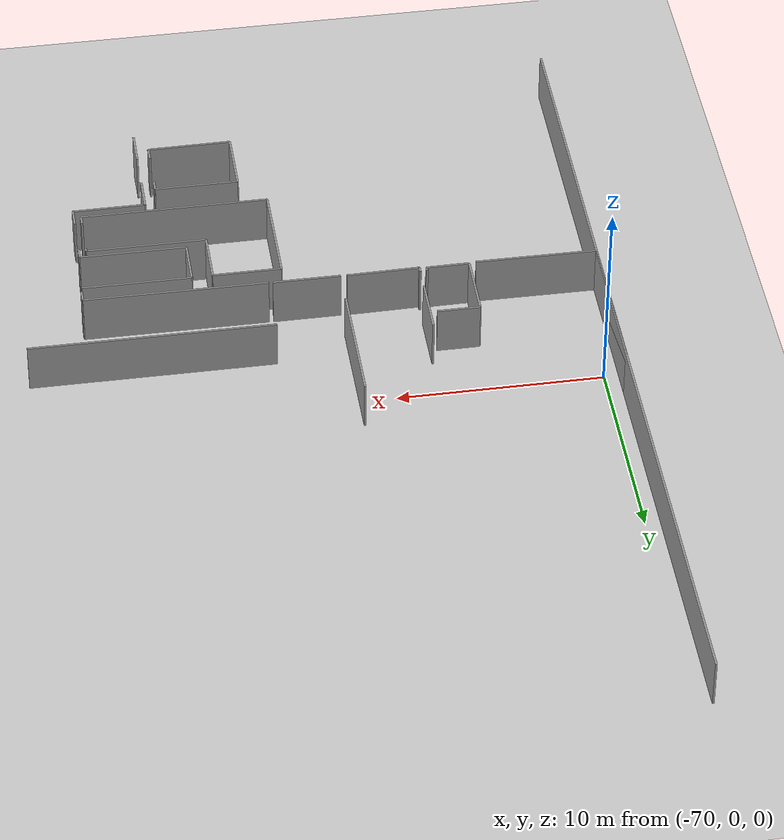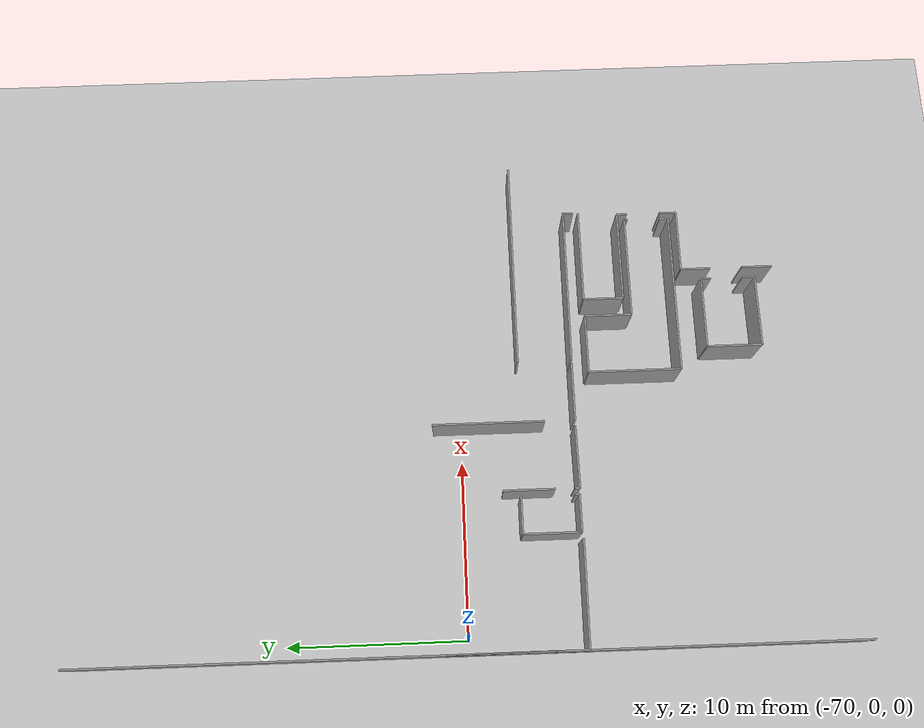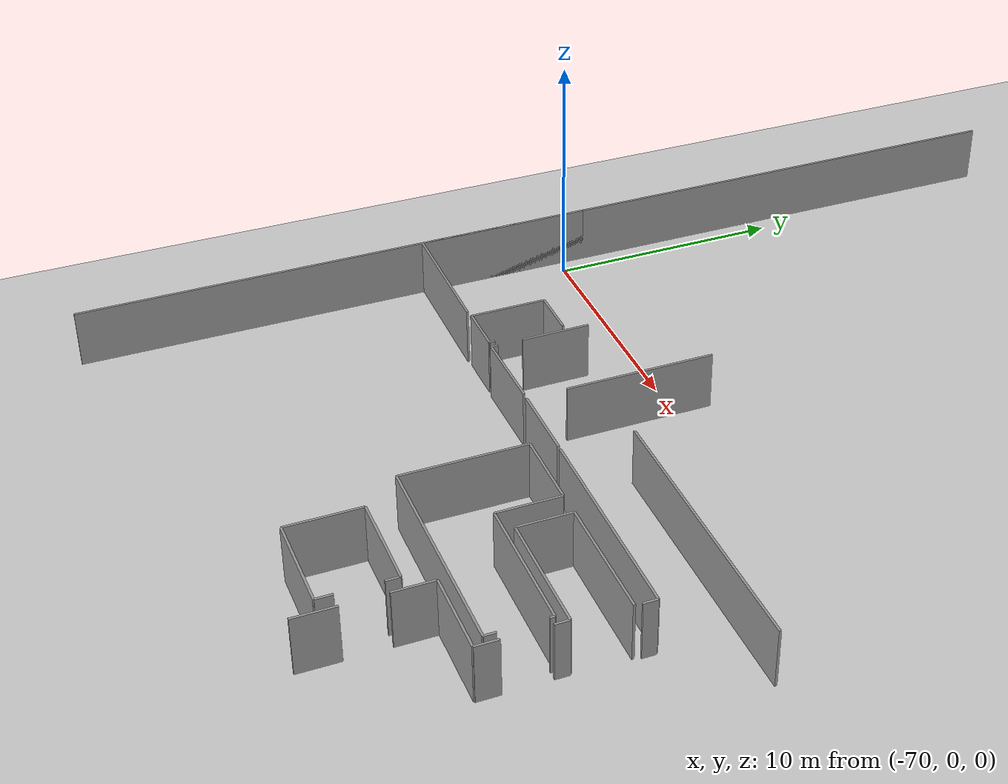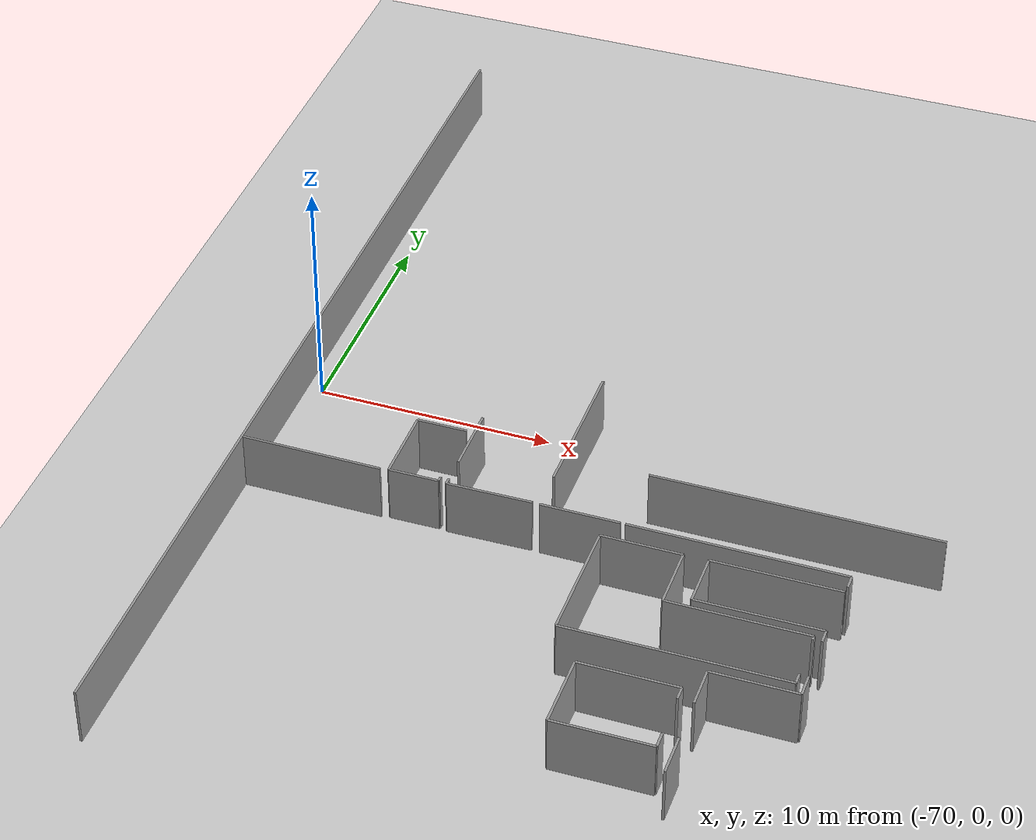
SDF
<sdf version="1.6">
 <world name="default">
  <model name="ground_plane">
   <static>1</static>
   <link name="link">
    <collision name="collision">
     <geometry><plane><normal>0 0 1</normal><size>100 100</size></plane></geometry>
     <surface><friction><ode><mu>100</mu><mu2>50</mu2></ode></friction></surface>
    </collision>
    <visual name="visual">
     <cast_shadows>0</cast_shadows>
     <geometry><plane><normal>0 0 1</normal><size>100 100</size></plane></geometry>
     <material>
      <script><uri>file://media/materials/scripts/gazebo.material</uri><name>Gazebo/Grey</name></script>
     </material>
    </visual>
   </link>
  </model>
  <model name="0510035738_A_40_1_101">
   <static>1</static>
   <link name="Wall_7">
    <collision name="Wall_7_Collision">
     <geometry><box><size>3.29875439643 0.1 2.5</size></box></geometry>
     <pose>1.64937719822 0 1.25 0 0 0</pose>
    </collision>
    <visual name="Wall_7_Visual">
     <pose>1.64937719822 0 1.25 0 0 0</pose>
     <geometry><box><size>3.29875439643 0.1 2.5</size></box></geometry>
     <material>
      <script><uri>file://media/materials/scripts/gazebo.material</uri><name>Gazebo/Grey</name></script>
      <ambient>1 1 1 1</ambient>
     </material>
    </visual>
    <pose>15.8032936755 -27.9271683787 0 0 0 3.14159265359</pose>
   </link>
   <link name="Wall_8">
    <collision name="Wall_8_Collision">
     <geometry><box><size>6.28413982249 0.1 2.5</size></box></geometry>
     <pose>3.14206991125 0 1.25 0 0 0</pose>
    </collision>
    <visual name="Wall_8_Visual">
     <pose>3.14206991125 0 1.25 0 0 0</pose>
     <geometry><box><size>6.28413982249 0.1 2.5</size></box></geometry>
     <material>
      <script><uri>file://media/materials/scripts/gazebo.material</uri><name>Gazebo/Grey</name></script>
      <ambient>1 1 1 1</ambient>
     </material>
    </visual>
    <pose>12.504539279 -26.2457940247 0 0 0 1.57079632679</pose>
   </link>
   <link name="Wall_24">
    <collision name="Wall_24_Collision">
     <geometry><box><size>7.58205619818 0.1 2.5</size></box></geometry>
     <pose>3.79102809909 0 1.25 0 0 0</pose>
    </collision>
    <visual name="Wall_24_Visual">
     <pose>3.79102809909 0 1.25 0 0 0</pose>
     <geometry><box><size>7.58205619818 0.1 2.5</size></box></geometry>
     <material>
      <script><uri>file://media/materials/scripts/gazebo.material</uri><name>Gazebo/Grey</name></script>
      <ambient>1 1 1 1</ambient>
     </material>
    </visual>
    <pose>0.0 -27.9596734259 0 0 0 1.57079632679</pose>
   </link>
   <link name="Wall_28">
    <collision name="Wall_28_Collision">
     <geometry><box><size>5.91169654504 0.1 2.5</size></box></geometry>
     <pose>2.95584827252 0 1.25 0 0 0</pose>
    </collision>
    <visual name="Wall_28_Visual">
     <pose>2.95584827252 0 1.25 0 0 0</pose>
     <geometry><box><size>5.91169654504 0.1 2.5</size></box></geometry>
     <material>
      <script><uri>file://media/materials/scripts/gazebo.material</uri><name>Gazebo/Grey</name></script>
      <ambient>1 1 1 1</ambient>
     </material>
    </visual>
    <pose>5.91160150844 -27.9931942557 0 0 0 3.1359223677</pose>
   </link>
   <link name="Wall_29">
    <collision name="Wall_29_Collision">
     <geometry><box><size>0.277054737992 0.1 2.5</size></box></geometry>
     <pose>0.138527368996 0 1.25 0 0 0</pose>
    </collision>
    <visual name="Wall_29_Visual">
     <pose>0.138527368996 0 1.25 0 0 0</pose>
     <geometry><box><size>0.277054737992 0.1 2.5</size></box></geometry>
     <material>
      <script><uri>file://media/materials/scripts/gazebo.material</uri><name>Gazebo/Grey</name></script>
      <ambient>1 1 1 1</ambient>
     </material>
    </visual>
    <pose>8.66742003885 -27.9642444481 0 0 0 1.57079632679</pose>
   </link>
   <link name="Wall_30">
    <collision name="Wall_30_Collision">
     <geometry><box><size>2.8764427289 0.1 2.5</size></box></geometry>
     <pose>1.43822136445 0 1.25 0 0 0</pose>
    </collision>
    <visual name="Wall_30_Visual">
     <pose>1.43822136445 0 1.25 0 0 0</pose>
     <geometry><box><size>2.8764427289 0.1 2.5</size></box></geometry>
     <material>
      <script><uri>file://media/materials/scripts/gazebo.material</uri><name>Gazebo/Grey</name></script>
      <ambient>1 1 1 1</ambient>
     </material>
    </visual>
    <pose>8.66742003885 -26.6152849905 0 0 0 1.57079632679</pose>
   </link>
   <link name="Wall_34">
    <collision name="Wall_34_Collision">
     <geometry><box><size>3.53784264876 0.1 2.5</size></box></geometry>
     <pose>1.76892132438 0 1.25 0 0 0</pose>
    </collision>
    <visual name="Wall_34_Visual">
     <pose>1.76892132438 0 1.25 0 0 0</pose>
     <geometry><box><size>3.53784264876 0.1 2.5</size></box></geometry>
     <material>
      <script><uri>file://media/materials/scripts/gazebo.material</uri><name>Gazebo/Grey</name></script>
      <ambient>1 1 1 1</ambient>
     </material>
    </visual>
    <pose>12.2048833754 -27.9124395292 0 0 0 -3.12694904855</pose>
   </link>
   <link name="Wall_35">
    <collision name="Wall_35_Collision">
     <geometry><box><size>3.21698388715 0.1 2.5</size></box></geometry>
     <pose>1.60849194357 0 1.25 0 0 0</pose>
    </collision>
    <visual name="Wall_35_Visual">
     <pose>1.60849194357 0 1.25 0 0 0</pose>
     <geometry><box><size>3.21698388715 0.1 2.5</size></box></geometry>
     <material>
      <script><uri>file://media/materials/scripts/gazebo.material</uri><name>Gazebo/Grey</name></script>
      <ambient>1 1 1 1</ambient>
     </material>
    </visual>
    <pose>6.24680980738 -27.9327551837 0 0 0 1.57079632679</pose>
   </link>
   <link name="Wall_36">
    <collision name="Wall_36_Collision">
     <geometry><box><size>2.08590982389 0.1 2.5</size></box></geometry>
     <pose>1.04295491194 0 1.25 0 0 0</pose>
    </collision>
    <visual name="Wall_36_Visual">
     <pose>1.04295491194 0 1.25 0 0 0</pose>
     <geometry><box><size>2.08590982389 0.1 2.5</size></box></geometry>
     <material>
      <script><uri>file://media/materials/scripts/gazebo.material</uri><name>Gazebo/Grey</name></script>
      <ambient>1 1 1 1</ambient>
     </material>
    </visual>
    <pose>6.24680980738 -24.7157712965 0 0 0 0.0</pose>
   </link>
   <link name="Wall_38">
    <collision name="Wall_38_Collision">
     <geometry><box><size>0.219663014081 0.1 2.5</size></box></geometry>
     <pose>0.109831507041 0 1.25 0 0 0</pose>
    </collision>
    <visual name="Wall_38_Visual">
     <pose>0.109831507041 0 1.25 0 0 0</pose>
     <geometry><box><size>0.219663014081 0.1 2.5</size></box></geometry>
     <material>
      <script><uri>file://media/materials/scripts/gazebo.material</uri><name>Gazebo/Grey</name></script>
      <ambient>1 1 1 1</ambient>
     </material>
    </visual>
    <pose>8.33271963127 -27.696839646 0 0 0 -1.57079632679</pose>
   </link>
   <link name="Wall_39">
    <collision name="Wall_39_Collision">
     <geometry><box><size>2.08597313931 0.1 2.5</size></box></geometry>
     <pose>1.04298656965 0 1.25 0 0 0</pose>
    </collision>
    <visual name="Wall_39_Visual">
     <pose>1.04298656965 0 1.25 0 0 0</pose>
     <geometry><box><size>2.08597313931 0.1 2.5</size></box></geometry>
     <material>
      <script><uri>file://media/materials/scripts/gazebo.material</uri><name>Gazebo/Grey</name></script>
      <ambient>1 1 1 1</ambient>
     </material>
    </visual>
    <pose>8.33271963127 -27.9165026601 0 0 0 -3.1338012359</pose>
   </link>
   <link name="Wall_45">
    <collision name="Wall_45_Collision">
     <geometry><box><size>11.8983709385 0.1 2.5</size></box></geometry>
     <pose>5.94918546923 0 1.25 0 0 0</pose>
    </collision>
    <visual name="Wall_45_Visual">
     <pose>5.94918546923 0 1.25 0 0 0</pose>
     <geometry><box><size>11.8983709385 0.1 2.5</size></box></geometry>
     <material>
      <script><uri>file://media/materials/scripts/gazebo.material</uri><name>Gazebo/Grey</name></script>
      <ambient>1 1 1 1</ambient>
     </material>
    </visual>
    <pose>15.9957845017 -24.8925174905 0 0 0 0.0</pose>
   </link>
   <link name="Wall_48">
    <collision name="Wall_48_Collision">
     <geometry><box><size>0.587122414516 0.1 2.5</size></box></geometry>
     <pose>0.293561207258 0 1.25 0 0 0</pose>
    </collision>
    <visual name="Wall_48_Visual">
     <pose>0.293561207258 0 1.25 0 0 0</pose>
     <geometry><box><size>0.587122414516 0.1 2.5</size></box></geometry>
     <material>
      <script><uri>file://media/materials/scripts/gazebo.material</uri><name>Gazebo/Grey</name></script>
      <ambient>1 1 1 1</ambient>
     </material>
    </visual>
    <pose>24.9445763551 -28.5607628528 0 0 0 1.57079632679</pose>
   </link>
   <link name="Wall_49">
    <collision name="Wall_49_Collision">
     <geometry><box><size>8.94888525124 0.1 2.5</size></box></geometry>
     <pose>4.47444262562 0 1.25 0 0 0</pose>
    </collision>
    <visual name="Wall_49_Visual">
     <pose>4.47444262562 0 1.25 0 0 0</pose>
     <geometry><box><size>8.94888525124 0.1 2.5</size></box></geometry>
     <material>
      <script><uri>file://media/materials/scripts/gazebo.material</uri><name>Gazebo/Grey</name></script>
      <ambient>1 1 1 1</ambient>
     </material>
    </visual>
    <pose>24.9445763551 -27.9736404383 0 0 0 3.13702388377</pose>
   </link>
   <link name="Wall_71">
    <collision name="Wall_71_Collision">
     <geometry><box><size>1.74562261132 0.1 2.5</size></box></geometry>
     <pose>0.872811305662 0 1.25 0 0 0</pose>
    </collision>
    <visual name="Wall_71_Visual">
     <pose>0.872811305662 0 1.25 0 0 0</pose>
     <geometry><box><size>1.74562261132 0.1 2.5</size></box></geometry>
     <material>
      <script><uri>file://media/materials/scripts/gazebo.material</uri><name>Gazebo/Grey</name></script>
      <ambient>1 1 1 1</ambient>
     </material>
    </visual>
    <pose>21.2326523357 -39.8336655789 0 0 0 1.57079632679</pose>
   </link>
   <link name="Wall_72">
    <collision name="Wall_72_Collision">
     <geometry><box><size>1.704483411 0.1 2.5</size></box></geometry>
     <pose>0.852241705499 0 1.25 0 0 0</pose>
    </collision>
    <visual name="Wall_72_Visual">
     <pose>0.852241705499 0 1.25 0 0 0</pose>
     <geometry><box><size>1.704483411 0.1 2.5</size></box></geometry>
     <material>
      <script><uri>file://media/materials/scripts/gazebo.material</uri><name>Gazebo/Grey</name></script>
      <ambient>1 1 1 1</ambient>
     </material>
    </visual>
    <pose>21.2326523357 -36.273347131 0 0 0 1.57079632679</pose>
   </link>
   <link name="Wall_73">
    <collision name="Wall_73_Collision">
     <geometry><box><size>3.54736721815 0.1 2.5</size></box></geometry>
     <pose>1.77368360908 0 1.25 0 0 0</pose>
    </collision>
    <visual name="Wall_73_Visual">
     <pose>1.77368360908 0 1.25 0 0 0</pose>
     <geometry><box><size>3.54736721815 0.1 2.5</size></box></geometry>
     <material>
      <script><uri>file://media/materials/scripts/gazebo.material</uri><name>Gazebo/Grey</name></script>
      <ambient>1 1 1 1</ambient>
     </material>
    </visual>
    <pose>21.2326523357 -34.5688637201 0 0 0 0.0</pose>
   </link>
   <link name="Wall_74">
    <collision name="Wall_74_Collision">
     <geometry><box><size>0.95966072857 0.1 2.5</size></box></geometry>
     <pose>0.479830364285 0 1.25 0 0 0</pose>
    </collision>
    <visual name="Wall_74_Visual">
     <pose>0.479830364285 0 1.25 0 0 0</pose>
     <geometry><box><size>0.95966072857 0.1 2.5</size></box></geometry>
     <material>
      <script><uri>file://media/materials/scripts/gazebo.material</uri><name>Gazebo/Grey</name></script>
      <ambient>1 1 1 1</ambient>
     </material>
    </visual>
    <pose>24.7800195538 -34.5688637201 0 0 0 1.57079632679</pose>
   </link>
   <link name="Wall_75">
    <collision name="Wall_75_Collision">
     <geometry><box><size>0.592963165179 0.1 2.5</size></box></geometry>
     <pose>0.296481582589 0 1.25 0 0 0</pose>
    </collision>
    <visual name="Wall_75_Visual">
     <pose>0.296481582589 0 1.25 0 0 0</pose>
     <geometry><box><size>0.592963165179 0.1 2.5</size></box></geometry>
     <material>
      <script><uri>file://media/materials/scripts/gazebo.material</uri><name>Gazebo/Grey</name></script>
      <ambient>1 1 1 1</ambient>
     </material>
    </visual>
    <pose>24.7800195538 -31.7094353518 0 0 0 1.57079632679</pose>
   </link>
   <link name="Wall_76">
    <collision name="Wall_76_Collision">
     <geometry><box><size>5.17719059893 0.1 2.5</size></box></geometry>
     <pose>2.58859529947 0 1.25 0 0 0</pose>
    </collision>
    <visual name="Wall_76_Visual">
     <pose>2.58859529947 0 1.25 0 0 0</pose>
     <geometry><box><size>5.17719059893 0.1 2.5</size></box></geometry>
     <material>
      <script><uri>file://media/materials/scripts/gazebo.material</uri><name>Gazebo/Grey</name></script>
      <ambient>1 1 1 1</ambient>
     </material>
    </visual>
    <pose>24.7800195538 -31.1164721866 0 0 0 3.14159265359</pose>
   </link>
   <link name="Wall_77">
    <collision name="Wall_77_Collision">
     <geometry><box><size>2.27179806239 0.1 2.5</size></box></geometry>
     <pose>1.1358990312 0 1.25 0 0 0</pose>
    </collision>
    <visual name="Wall_77_Visual">
     <pose>1.1358990312 0 1.25 0 0 0</pose>
     <geometry><box><size>2.27179806239 0.1 2.5</size></box></geometry>
     <material>
      <script><uri>file://media/materials/scripts/gazebo.material</uri><name>Gazebo/Grey</name></script>
      <ambient>1 1 1 1</ambient>
     </material>
    </visual>
    <pose>19.6028289549 -31.1164721866 0 0 0 1.57079632679</pose>
   </link>
   <link name="Wall_78">
    <collision name="Wall_78_Collision">
     <geometry><box><size>5.30975024442 0.1 2.5</size></box></geometry>
     <pose>2.65487512221 0 1.25 0 0 0</pose>
    </collision>
    <visual name="Wall_78_Visual">
     <pose>2.65487512221 0 1.25 0 0 0</pose>
     <geometry><box><size>5.30975024442 0.1 2.5</size></box></geometry>
     <material>
      <script><uri>file://media/materials/scripts/gazebo.material</uri><name>Gazebo/Grey</name></script>
      <ambient>1 1 1 1</ambient>
     </material>
    </visual>
    <pose>19.6028289549 -28.8446741242 0 0 0 0.0</pose>
   </link>
   <link name="Wall_82">
    <collision name="Wall_82_Collision">
     <geometry><box><size>5.23966123646 0.1 2.5</size></box></geometry>
     <pose>2.61983061823 0 1.25 0 0 0</pose>
    </collision>
    <visual name="Wall_82_Visual">
     <pose>2.61983061823 0 1.25 0 0 0</pose>
     <geometry><box><size>5.23966123646 0.1 2.5</size></box></geometry>
     <material>
      <script><uri>file://media/materials/scripts/gazebo.material</uri><name>Gazebo/Grey</name></script>
      <ambient>1 1 1 1</ambient>
     </material>
    </visual>
    <pose>15.2603578095 -34.101603667 0 0 0 1.57079632679</pose>
   </link>
   <link name="Wall_83">
    <collision name="Wall_83_Collision">
     <geometry><box><size>3.33303706337 0.1 2.5</size></box></geometry>
     <pose>1.66651853169 0 1.25 0 0 0</pose>
    </collision>
    <visual name="Wall_83_Visual">
     <pose>1.66651853169 0 1.25 0 0 0</pose>
     <geometry><box><size>3.33303706337 0.1 2.5</size></box></geometry>
     <material>
      <script><uri>file://media/materials/scripts/gazebo.material</uri><name>Gazebo/Grey</name></script>
      <ambient>1 1 1 1</ambient>
     </material>
    </visual>
    <pose>15.2603578095 -28.8619424305 0 0 0 0.0</pose>
   </link>
   <link name="Wall_84">
    <collision name="Wall_84_Collision">
     <geometry><box><size>2.66414413957 0.1 2.5</size></box></geometry>
     <pose>1.33207206978 0 1.25 0 0 0</pose>
    </collision>
    <visual name="Wall_84_Visual">
     <pose>1.33207206978 0 1.25 0 0 0</pose>
     <geometry><box><size>2.66414413957 0.1 2.5</size></box></geometry>
     <material>
      <script><uri>file://media/materials/scripts/gazebo.material</uri><name>Gazebo/Grey</name></script>
      <ambient>1 1 1 1</ambient>
     </material>
    </visual>
    <pose>18.5933948728 -28.8619424305 0 0 0 -1.57079632679</pose>
   </link>
   <link name="Wall_85">
    <collision name="Wall_85_Collision">
     <geometry><box><size>5.833132293 0.1 2.5</size></box></geometry>
     <pose>2.9165661465 0 1.25 0 0 0</pose>
    </collision>
    <visual name="Wall_85_Visual">
     <pose>2.9165661465 0 1.25 0 0 0</pose>
     <geometry><box><size>5.833132293 0.1 2.5</size></box></geometry>
     <material>
      <script><uri>file://media/materials/scripts/gazebo.material</uri><name>Gazebo/Grey</name></script>
      <ambient>1 1 1 1</ambient>
     </material>
    </visual>
    <pose>18.5933948728 -31.5260865701 0 0 0 0.0</pose>
   </link>
   <link name="Wall_86">
    <collision name="Wall_86_Collision">
     <geometry><box><size>0.189189532359 0.1 2.5</size></box></geometry>
     <pose>0.0945947661795 0 1.25 0 0 0</pose>
    </collision>
    <visual name="Wall_86_Visual">
     <pose>0.0945947661795 0 1.25 0 0 0</pose>
     <geometry><box><size>0.189189532359 0.1 2.5</size></box></geometry>
     <material>
      <script><uri>file://media/materials/scripts/gazebo.material</uri><name>Gazebo/Grey</name></script>
      <ambient>1 1 1 1</ambient>
     </material>
    </visual>
    <pose>24.4265271658 -31.5260865701 0 0 0 -1.57079632679</pose>
   </link>
   <link name="Wall_87">
    <collision name="Wall_87_Collision">
     <geometry><box><size>0.483004685298 0.1 2.5</size></box></geometry>
     <pose>0.241502342649 0 1.25 0 0 0</pose>
    </collision>
    <visual name="Wall_87_Visual">
     <pose>0.241502342649 0 1.25 0 0 0</pose>
     <geometry><box><size>0.483004685298 0.1 2.5</size></box></geometry>
     <material>
      <script><uri>file://media/materials/scripts/gazebo.material</uri><name>Gazebo/Grey</name></script>
      <ambient>1 1 1 1</ambient>
     </material>
    </visual>
    <pose>24.4265271658 -33.6086951001 0 0 0 -1.57079632679</pose>
   </link>
   <link name="Wall_88">
    <collision name="Wall_88_Collision">
     <geometry><box><size>9.16617470686 0.1 2.5</size></box></geometry>
     <pose>4.58308735343 0 1.25 0 0 0</pose>
    </collision>
    <visual name="Wall_88_Visual">
     <pose>4.58308735343 0 1.25 0 0 0</pose>
     <geometry><box><size>9.16617470686 0.1 2.5</size></box></geometry>
     <material>
      <script><uri>file://media/materials/scripts/gazebo.material</uri><name>Gazebo/Grey</name></script>
      <ambient>1 1 1 1</ambient>
     </material>
    </visual>
    <pose>24.4265271658 -34.0916997854 0 0 0 -3.14051217195</pose>
   </link>
   <link name="Wall_89">
    <collision name="Wall_89_Collision">
     <geometry><box><size>3.12175425676 0.1 2.5</size></box></geometry>
     <pose>1.56087712838 0 1.25 0 0 0</pose>
    </collision>
    <visual name="Wall_89_Visual">
     <pose>1.56087712838 0 1.25 0 0 0</pose>
     <geometry><box><size>3.12175425676 0.1 2.5</size></box></geometry>
     <material>
      <script><uri>file://media/materials/scripts/gazebo.material</uri><name>Gazebo/Grey</name></script>
      <ambient>1 1 1 1</ambient>
     </material>
    </visual>
    <pose>16.5252612466 -38.8021382226 0 0 0 1.57079632679</pose>
   </link>
   <link name="Wall_90">
    <collision name="Wall_90_Collision">
     <geometry><box><size>4.08014525693 0.1 2.5</size></box></geometry>
     <pose>2.04007262846 0 1.25 0 0 0</pose>
    </collision>
    <visual name="Wall_90_Visual">
     <pose>2.04007262846 0 1.25 0 0 0</pose>
     <geometry><box><size>4.08014525693 0.1 2.5</size></box></geometry>
     <material>
      <script><uri>file://media/materials/scripts/gazebo.material</uri><name>Gazebo/Grey</name></script>
      <ambient>1 1 1 1</ambient>
     </material>
    </visual>
    <pose>16.5252612466 -35.6803839659 0 0 0 0.0</pose>
   </link>
   <link name="Wall_91">
    <collision name="Wall_91_Collision">
     <geometry><box><size>0.574171184784 0.1 2.5</size></box></geometry>
     <pose>0.287085592392 0 1.25 0 0 0</pose>
    </collision>
    <visual name="Wall_91_Visual">
     <pose>0.287085592392 0 1.25 0 0 0</pose>
     <geometry><box><size>0.574171184784 0.1 2.5</size></box></geometry>
     <material>
      <script><uri>file://media/materials/scripts/gazebo.material</uri><name>Gazebo/Grey</name></script>
      <ambient>1 1 1 1</ambient>
     </material>
    </visual>
    <pose>20.6054065035 -35.6803839659 0 0 0 -1.57079632679</pose>
   </link>
   <link name="Wall_92">
    <collision name="Wall_92_Collision">
     <geometry><box><size>0.697080894397 0.1 2.5</size></box></geometry>
     <pose>0.348540447198 0 1.25 0 0 0</pose>
    </collision>
    <visual name="Wall_92_Visual">
     <pose>0.348540447198 0 1.25 0 0 0</pose>
     <geometry><box><size>0.697080894397 0.1 2.5</size></box></geometry>
     <material>
      <script><uri>file://media/materials/scripts/gazebo.material</uri><name>Gazebo/Grey</name></script>
      <ambient>1 1 1 1</ambient>
     </material>
    </visual>
    <pose>20.6054065035 -38.0740759552 0 0 0 -1.57079632679</pose>
   </link>
   <link name="Wall_93">
    <collision name="Wall_93_Collision">
     <geometry><box><size>4.08026287917 0.1 2.5</size></box></geometry>
     <pose>2.04013143958 0 1.25 0 0 0</pose>
    </collision>
    <visual name="Wall_93_Visual">
     <pose>2.04013143958 0 1.25 0 0 0</pose>
     <geometry><box><size>4.08026287917 0.1 2.5</size></box></geometry>
     <material>
      <script><uri>file://media/materials/scripts/gazebo.material</uri><name>Gazebo/Grey</name></script>
      <ambient>1 1 1 1</ambient>
     </material>
    </visual>
    <pose>20.6054065035 -38.7711568495 0 0 0 -3.13399959606</pose>
   </link>
   <link name="Wall_139">
    <collision name="Wall_139_Collision">
     <geometry><box><size>43.1258173877 0.1 2.5</size></box></geometry>
     <pose>21.5629086938 0 1.25 0 0 0</pose>
    </collision>
    <visual name="Wall_139_Visual">
     <pose>21.5629086938 0 1.25 0 0 0</pose>
     <geometry><box><size>43.1258173877 0.1 2.5</size></box></geometry>
     <material>
      <script><uri>file://media/materials/scripts/gazebo.material</uri><name>Gazebo/Grey</name></script>
      <ambient>1 1 1 1</ambient>
     </material>
    </visual>
    <pose>0.0 -43.1258173877 0 0 0 1.57079632679</pose>
   </link>
   <pose>-70.75 21.5758173877 0 0 0 0</pose>
  </model>
 </world>
</sdf>
